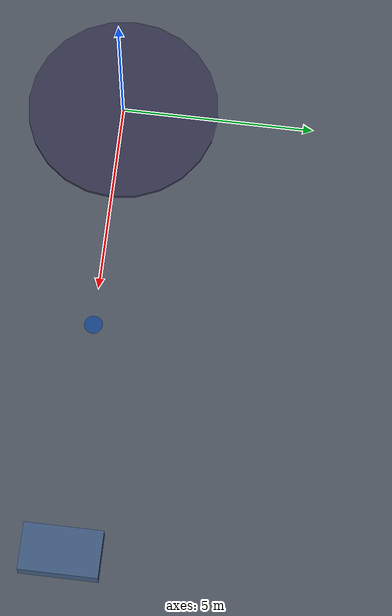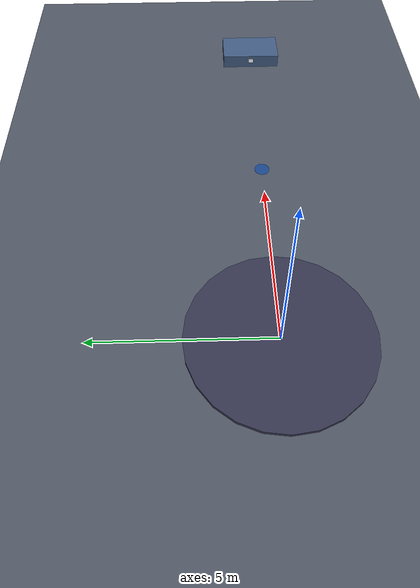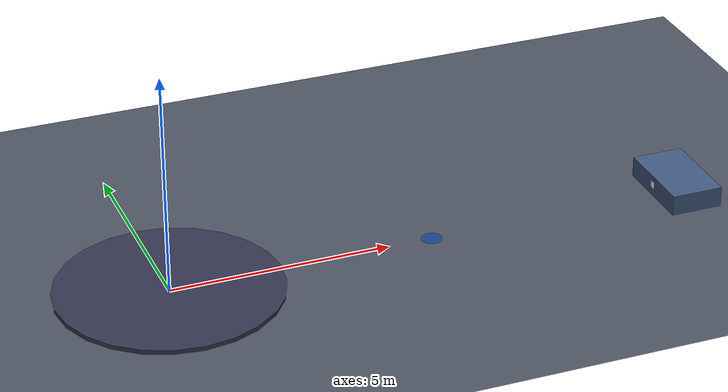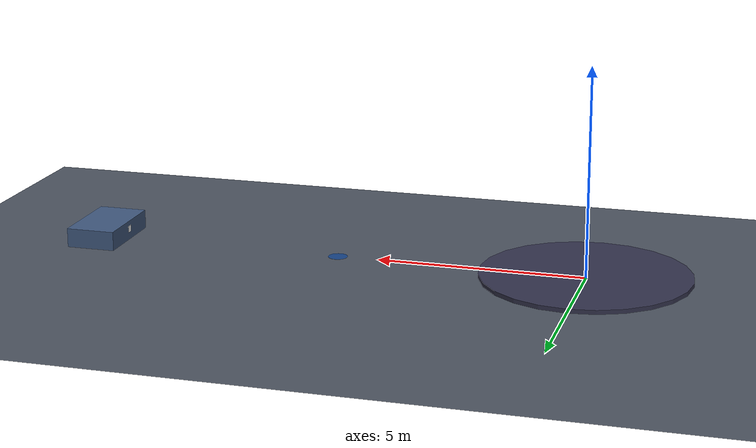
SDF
<sdf version="1.9">
 <world name="dpsi_expo_pavilion">
  <physics name="1ms" type="dart">
   <max_step_size>0.001</max_step_size>
   <real_time_factor>1.0</real_time_factor>
  </physics>
  <plugin filename="gz-sim-physics-system" name="gz::sim::systems::Physics"/>
  <plugin filename="gz-sim-user-commands-system" name="gz::sim::systems::UserCommands"/>
  <plugin filename="gz-sim-scene-broadcaster-system" name="gz::sim::systems::SceneBroadcaster"/>
  <plugin filename="gz-sim-sensors-system" name="gz::sim::systems::Sensors">
   <render_engine>ogre2</render_engine>
  </plugin>
  <light type="directional" name="sun">
   <pose>0 0 10 0 0 0</pose>
   <diffuse>0.85 0.85 0.85 1</diffuse>
   <specular>0.2 0.2 0.2 1</specular>
   <attenuation>
    <range>1000</range>
    <constant>0.9</constant>
    <linear>0.01</linear>
    <quadratic>0.001</quadratic>
   </attenuation>
   <direction>-0.5 0.1 -0.9</direction>
  </light>
  <model name="ground_plane">
   <static>true</static>
   <link name="link">
    <collision name="collision">
     <geometry><plane><normal>0 0 1</normal><size>50 50</size></plane></geometry>
     <surface><friction><ode><mu>1.0</mu><mu2>1.0</mu2></ode></friction></surface>
    </collision>
    <visual name="visual">
     <geometry><plane><normal>0 0 1</normal><size>50 50</size></plane></geometry>
     <material>
      <ambient>0.2 0.22 0.25 1</ambient>
      <diffuse>0.3 0.33 0.38 1</diffuse>
      <specular>0.1 0.1 0.1 1</specular>
     </material>
    </visual>
   </link>
  </model>
  <model name="booth_01_solar_cart">
   <static>true</static>
   <pose>12.0 0.0 0.0 0 0 3.14159</pose>
   <link name="stand_link">
    <collision name="collision"><geometry><box><size>1.2 2.0 0.9</size></box></geometry></collision>
    <visual name="visual_table">
     <geometry><box><size>1.2 2.0 0.9</size></box></geometry>
     <material><ambient>0.15 0.2 0.3 1</ambient><diffuse>0.25 0.35 0.5 1</diffuse></material>
    </visual>
    <visual name="aruco_marker_10">
     <pose>0.61 0.0 0.25 0 1.5708 0</pose>
     <geometry><box><size>0.16 0.16 0.005</size></box></geometry>
     <material><ambient>1 1 1 1</ambient><diffuse>1 1 1 1</diffuse></material>
    </visual>
   </link>
  </model>
  <model name="liquid_spill_hazard">
   <static>true</static>
   <pose>6.0 0.0 0.002 0 0 0</pose>
   <link name="spill_link">
    <visual name="visual_spill">
     <geometry><cylinder><radius>0.235</radius><length>0.004</length></cylinder></geometry>
     <material>
      <ambient>0.05 0.15 0.3 0.85</ambient>
      <diffuse>0.1 0.3 0.6 0.85</diffuse>
      <specular>0.95 0.95 1.0 1.0</specular>
     </material>
    </visual>
    <collision name="spill_collision">
     <geometry><cylinder><radius>0.235</radius><length>0.004</length></cylinder></geometry>
     <surface><friction><ode><mu>0.05</mu><mu2>0.05</mu2></ode></friction></surface>
    </collision>
   </link>
  </model>
  <model name="stage_platform">
   <static>true</static>
   <pose>0.0 0.0 0.05 0 0 0</pose>
   <link name="stage_link">
    <collision name="collision">
     <geometry><cylinder><radius>2.5</radius><length>0.10</length></cylinder></geometry>
    </collision>
    <visual name="visual">
     <geometry><cylinder><radius>2.5</radius><length>0.10</length></cylinder></geometry>
     <material><ambient>0.1 0.1 0.15 1</ambient><diffuse>0.2 0.2 0.3 1</diffuse></material>
    </visual>
   </link>
  </model>
 </world>
</sdf>
